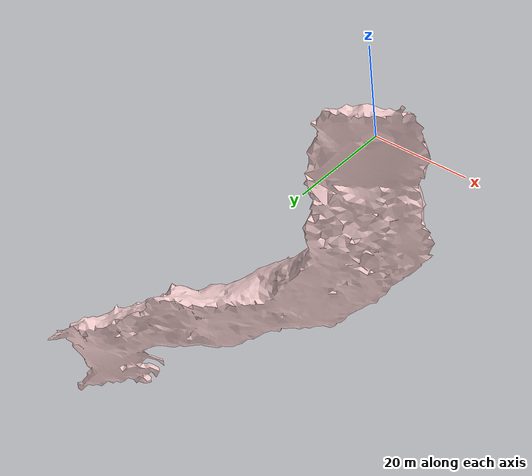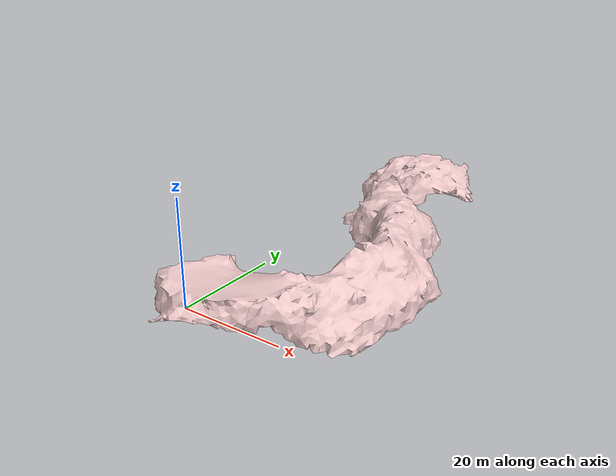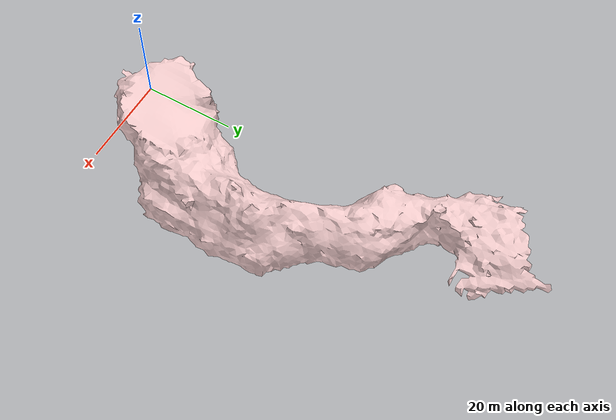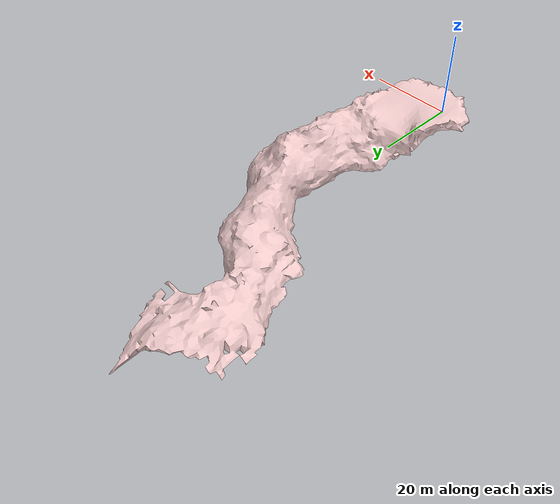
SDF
<?xml version="1.0" ?>
<sdf version="1.6">
  <model name="indian_tunnel">
    <static>true</static>
    <link name="indian_tunnel_link">
      <pose>0 0 0 0 0 0</pose>
      <collision name="indian_tunnel_collision">
        <geometry>
          <mesh>
            <uri>model://indian_tunnel/indian_tunnel.dae</uri>
          </mesh>
        </geometry>
      </collision>
      <visual name="indian_tunnel_visual">
        <geometry>
          <mesh>
            <uri>model://indian_tunnel/indian_tunnel.dae</uri>
          </mesh>
        </geometry>
        <material>
          <ambient>0 0 0 1</ambient>
          <diffuse>0.95 0.8 0.8 1</diffuse>
          <specular>0.1 0.95 0.95 1</specular>
          <emissive>0 0 0 1</emissive>
        </material>
        <cast_shadows>false</cast_shadows>
      </visual>
    </link>
  </model>
</sdf>
